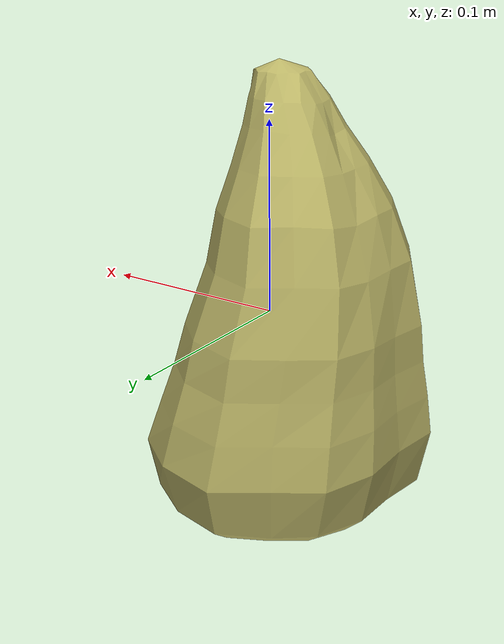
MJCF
<mujoco model="Lettuce_10">
  <compiler autolimits="true" boundmass="0.01" angle="radian"/>
  <default>
    <default class="/">
      <default class="__VISUAL_MJT__">
        <geom contype="0" conaffinity="0" group="0"/>
      </default>
      <default class="__STRUCTURAL_MJT__">
        <geom contype="8" conaffinity="15" group="4" friction="0.90000000000000002 0.90000000000000002 0.001" solref="0.025000000000000001 1" solimp="0.998 0.998 0.001"/>
      </default>
      <default class="__DYNAMIC_MJT__">
        <geom contype="1" conaffinity="15" group="4" friction="0.90000000000000002 0.90000000000000002 0.001" solref="0.025000000000000001 1" solimp="0.998 0.998 0.001"/>
      </default>
    </default>
  </default>
  <asset>
    <texture name="Lettuce1_Mat" type="2d" file="Lettuce1_AlbedoTransparency.png"/>
    <material name="material_Lettuce1_Mat" class="/" texture="Lettuce1_Mat" specular="0.5" shininess="0.5" rgba="0.9945233 1 0.60294119999999995 1"/>
    <mesh name="Lettuce_10_lettuce_a10" class="/" file="Lettuce_10_lettuce_a10/Lettuce_10_lettuce_a10.obj" scale="1 1 1"/>
  </asset>
  <worldbody>
    <body name="Lettuce_10">
      <joint name="Lettuce_10_free" class="/" type="free" pos="0 0 0" axis="0 0 1" stiffness="0" range="0 0" armature="0" damping="0.10000000000000001" frictionloss="0"/>
      <body name="Lettuce_10_lettuce_a10" pos="-0.0020799999999999998 -0.00464 0.0064999999999999997" quat="1 0 0 0">
        <geom name="Lettuce_10_lettuce_a10" class="__VISUAL_MJT__" type="mesh" material="material_Lettuce1_Mat" shellinertia="true" mesh="Lettuce_10_lettuce_a10"/>
        <geom name="Lettuce_10_PrimitiveCollider_0" class="__DYNAMIC_MJT__" type="capsule" size="0.073876038193702698 1.0000000000000001e-05" rgba="0 1 0 1" pos="-0.0020766258239746094 0.0046391133219003677 -0.06006738543510437" quat="0.99999999999891198 1.4751396607739272e-06 0 0"/>
        <geom name="Lettuce_10_PrimitiveCollider_1" class="__DYNAMIC_MJT__" type="capsule" size="0.043554186820983887 0.004540562629699707" rgba="0 1 0 1" pos="-0.0014542000135406852 -0.0025310658384114504 0.07284875214099884" quat="0.99999999999891198 1.4751396607739272e-06 0 0"/>
        <geom name="Lettuce_10_PrimitiveCollider_2" class="__DYNAMIC_MJT__" type="capsule" size="0.060505010187625885 0.006983242928981781" rgba="0 1 0 1" pos="-0.0020766258239746094 0.0046390946954488754 0.0047104507684707642" quat="0.99999999999891198 1.4751396607739272e-06 0 0"/>
      </body>
    </body>
  </worldbody>
</mujoco>
